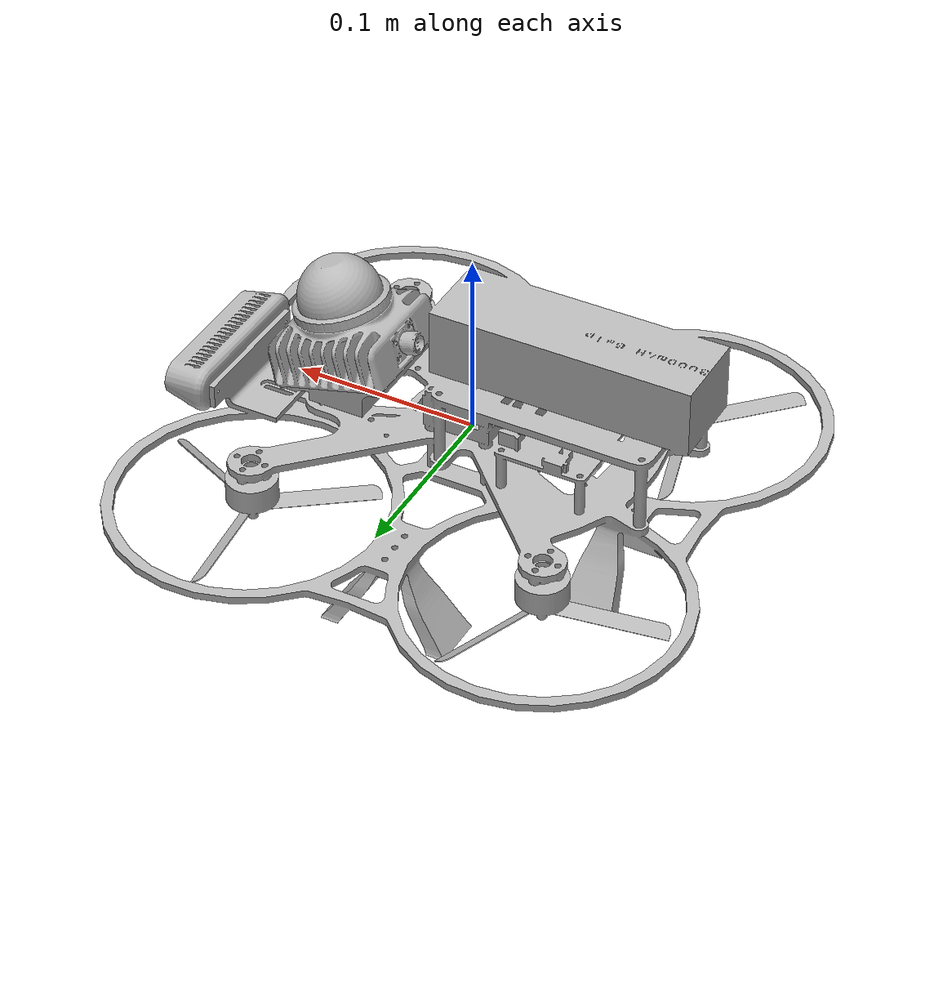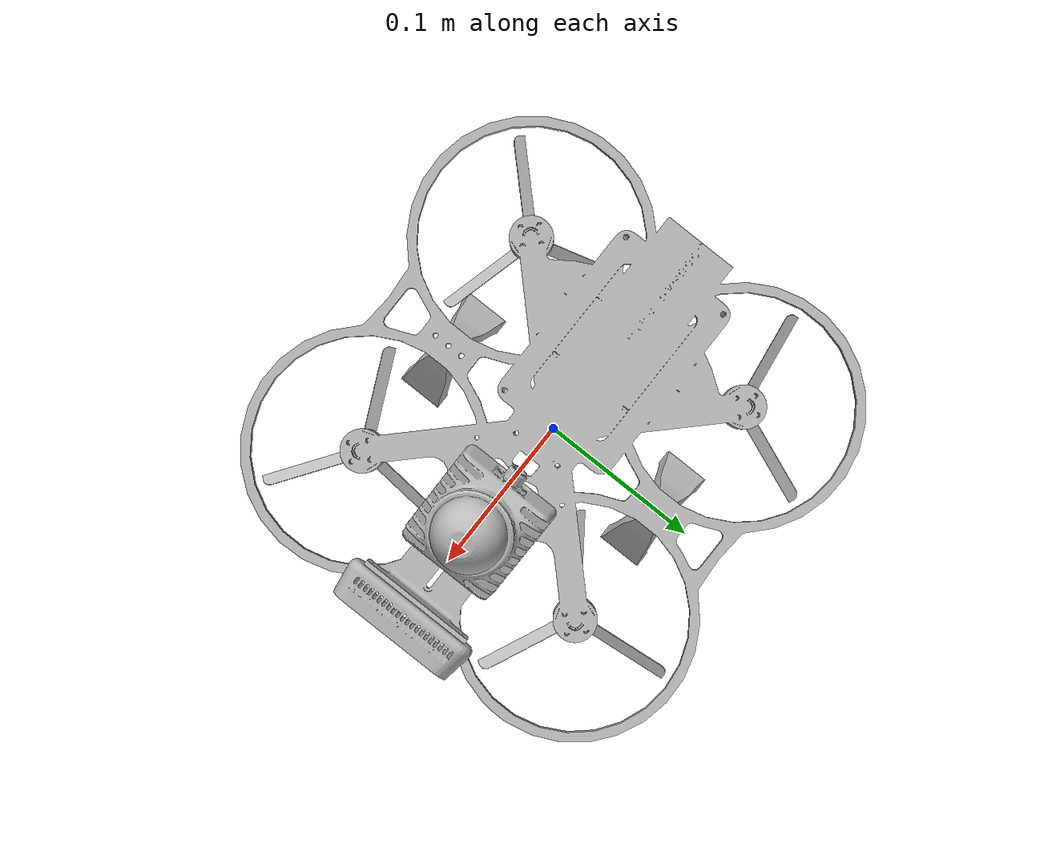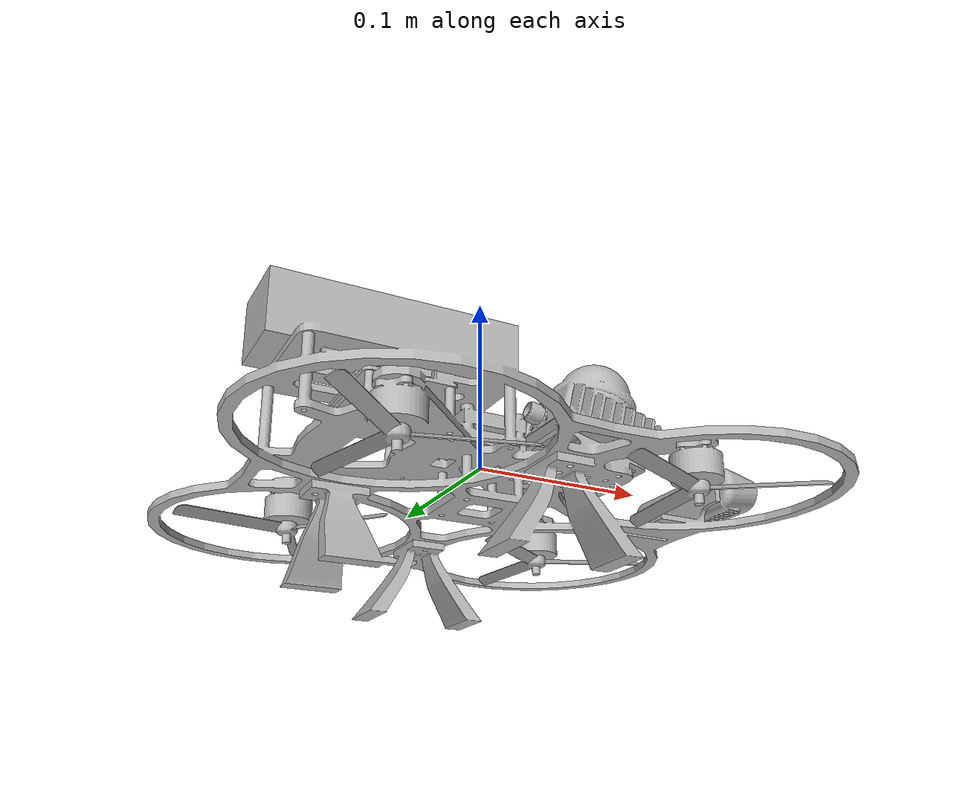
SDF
<?xml version="1.0" ?>
<sdf version='1.5'>
  <model name='uav'>

    <link name='base_link'>
      <pose frame=''>0 0 0 0 -0 0</pose>
      <inertial>
        <pose>-0.0225178215569021 -6.57896227218568E-06 0.0139624643866879 0 -0 0</pose>
        <mass>0.961089</mass>
        <inertia>
          <ixx>0.00127644805029181</ixx>
          <ixy>3.54202350999824E-08</ixy>
          <ixz>-7.517755485557E-08</ixz>
          <iyy>0.00522903</iyy>
          <iyz>0.00189227634416466</iyz>
          <izz>0.00309210466393083</izz>
        </inertia>
      </inertial>
      <collision name='base_link_collision'>
        <pose>0 0 0 0 -0 0</pose>
        <geometry>
          <mesh>
            <scale>1 1 1</scale>
            <uri>model://uav/meshes/base_link.STL</uri>
          </mesh>
        </geometry>
      </collision>
      <visual name='base_link_visual'>
        <pose>0 0 0 0 -0 0</pose>
        <geometry>
          <mesh>
            <scale>1 1 1</scale>
            <uri>model://uav/meshes/base_link.STL</uri>
          </mesh>
        </geometry>
      </visual>
      <gravity>1</gravity>
      <velocity_decay/>
    </link>

    <joint name="camera" type="fixed">
      <pose relative_to='base_link'>0.15532 0.0017162 -0.0013741 0 1.5708 0</pose>
      <parent>base_link</parent>
      <child>camera_link</child>
    </joint>

    <link name="camera_link">
      <pose relative_to='camera'>0 0 0 0 0 0</pose>
      <inertial>
        <pose>0.000136232063015659 -0.0017048035419846 -0.011444044647428 0 0 0</pose>
        <mass>0.107909832749777</mass>
        <inertia>
          <ixx>7.02561489057724E-05</ixx>
          <ixy>2.88922877896695E-10</ixy>
          <ixz>-4.93709713285397E-08</ixz>
          <iyy>7.70986396723321E-06</iyy>
          <iyz>-1.79670593839534E-08</iyz>
          <izz>7.125435257498E-05</izz>
        </inertia>
      </inertial>
      <collision name='camera_link_collision'>
       <pose>0 0 0 0 0 0</pose>
        <geometry>
          <mesh>
            <scale>1 1 1</scale>
            <uri>model://uav/meshes/camera_link.STL</uri>
          </mesh>
        </geometry>
      </collision>
      <visual name='camera_link_visual'>
        <pose>0 0 0 0 0 0</pose>
        <geometry>
          <mesh>
            <scale>1 1 1</scale>
            <uri>model://uav/meshes/camera_link.STL</uri>
          </mesh>
        </geometry>
      </visual>
      <gravity>1</gravity>
      <velocity_decay/>
    </link>

    <joint name="lidar" type="fixed">
      <pose relative_to='base_link'>0.080904 0 0.074681 0 0.2618 0</pose>
      <parent>base_link</parent>
      <child>lidar_link</child>
    </joint>

    <link name="lidar_link">
      <pose relative_to='lidar'>0 0 0 0 0 0</pose>
      <inertial>
        <pose>-0.000225895985044744 -2.48539042069229E-07 -0.0356306802252529 0 0 0</pose>
        <mass>0.126556231362929</mass>
        <inertia>
          <ixx>3.65033273726769E-05</ixx>
          <ixy>-9.06996386175696E-11</ixy>
          <ixz>3.04767232794276E-07</ixz>
          <iyy>3.97162828413759E-05</iyy>
          <iyz>1.45228125953335E-10</iyz>
          <izz>5.81891052137894E-05</izz>
        </inertia>
      </inertial>
       <collision name='lidar_link_collision'>
       <pose>0 0 0 0 0 0</pose>
        <geometry>
          <mesh>
            <scale>1 1 1</scale>
            <uri>model://uav/meshes/lidar_link.STL</uri>
          </mesh>
        </geometry>
      </collision>
      <visual name='lidar_link_visual'>
        <pose>0 0 0 0 0 0</pose>
        <geometry>
          <mesh>
            <scale>1 1 1</scale>
            <uri>model://uav/meshes/lidar_link.STL</uri>
          </mesh>
        </geometry>
      </visual>
      <sensor name='laser_livox' type='ray'>
        <visualize>1</visualize>
        <update_rate>10</update_rate>
        <always_on>1</always_on>
        <plugin name='gazebo_ros_laser_controller' filename='liblivox_laser_simulation.so'>
          <ray>
			  <scan>
				  <horizontal>
				    <samples>100</samples>
				    <resolution>1</resolution>
				    <min_angle>0</min_angle>
            			    <max_angle>6.28</max_angle>
				  </horizontal>
				  <vertical>
				    <samples>360</samples>
				    <resolution>1</resolution>
				    <min_angle>-0.0561995544444</min_angle>
           			    <max_angle>0.981223276667</max_angle>
				  </vertical>
			  </scan>
			  <range>
				  <min>0.1</min>
				  <max>30</max>
				  <resolution>0.02</resolution>
			  </range>
			  <noise>
				  <type>gaussian</type>
				  <mean>0.0</mean>
				  <stddev>0.0</stddev>
			  </noise>
			  </ray>
          <frameName>laser_livox_link</frameName>
          <visualize>1</visualize>
          <samples>24000</samples>
          <downsample>1</downsample>
          <csv_file_name>/home/tuxuan/A-Program/tx_ws/src/livox_laser_simulation/scan_mode/mid360.csv</csv_file_name>
          <ros_topic>/scan</ros_topic>
        </plugin>
        <pose>0 0 0 0 0 0</pose>
      </sensor>
      <gravity>1</gravity>
      <velocity_decay/>
    </link>

       <joint name='propeller_1' type='revolute'>
      <pose relative_to='base_link'>0.081317 0.081317 -0.0264 0 -0 0</pose>
      <parent>base_link</parent>
      <child>propeller_1_link</child>
      <axis>
        <xyz>0 0 -1</xyz>
        <limit>
          <lower>-1e+16</lower>
          <upper>1e+16</upper>
        </limit>
        <dynamics>
          <spring_reference>0</spring_reference>
          <spring_stiffness>0</spring_stiffness>
        </dynamics>
      </axis>
    </joint>

    <link name='propeller_1_link'>
      <pose relative_to='propeller_1'>0 0 0 0 -0 0</pose>
      <inertial>
        <pose>-0 -0 0.003491 0 -0 0</pose>
        <mass>0.0012983</mass>
        <inertia>
          <ixx>5.4247e-07</ixx>
          <ixy>-3.2114e-14</ixy>
          <ixz>8.3771e-14</ixz>
          <iyy>5.4246e-07</iyy>
          <iyz>5.8084e-15</iyz>
          <izz>1.0787e-06</izz>
        </inertia>
      </inertial>

      <collision name='propeller_1_link_collision'>
        <pose>0 0 0 0 -0 0</pose>
        <geometry>
          <mesh>
            <scale>1 1 1</scale>
            <uri>model://uav/meshes/propeller_1_link.STL</uri>
          </mesh>
        </geometry>
      </collision>
      <visual name='propeller_1_link_visual'>
        <pose>0 0 0 0 -0 0</pose>
        <geometry>
          <mesh>
            <scale>1 1 1</scale>
            <uri>model://uav/meshes/propeller_1_link.STL</uri>
          </mesh>
        </geometry>
      </visual>
      <gravity>1</gravity>
      <velocity_decay/>
    </link>

    <joint name='propeller_2' type='revolute'>
      <pose relative_to='base_link'>0.081317 -0.081317 -0.0264 0 -0 0</pose>
      <parent>base_link</parent>
      <child>propeller_2_link</child>
      <axis>
        <xyz>0 0 1</xyz>
        <limit>
          <lower>-1e+16</lower>
          <upper>1e+16</upper>
        </limit>
        <dynamics>
          <spring_reference>0</spring_reference>
          <spring_stiffness>0</spring_stiffness>
        </dynamics>
      </axis>
    </joint>

    <link name='propeller_2_link'>
      <pose relative_to='propeller_2'>0 0 0 0 -0 0</pose>
      <inertial>
        <pose>-0 -0 0.003491 0 -0 0</pose>
        <mass>0.00129831</mass>
        <inertia>
          <ixx>5.42465e-07</ixx>
          <ixy>-1.52128e-13</ixy>
          <ixz>6.07542e-14</ixz>
          <iyy>5.42465e-07</iyy>
          <iyz>2.54999e-14</iyz>
          <izz>1.07868e-06</izz>
        </inertia>
      </inertial>
      <collision name='propeller_2_link_collision'>
        <pose>0 0 0 0 -0 0</pose>
        <geometry>
          <mesh>
            <scale>1 1 1</scale>
            <uri>model://uav/meshes/propeller_2_link.STL</uri>
          </mesh>
        </geometry>
      </collision>
      <visual name='propeller_2_link_visual'>
        <pose>0 0 0 0 -0 0</pose>
        <geometry>
          <mesh>
            <scale>1 1 1</scale>
            <uri>model://uav/meshes/propeller_2_link.STL</uri>
          </mesh>
        </geometry>
      </visual>
      <gravity>1</gravity>
      <velocity_decay/>
    </link>

    <joint name='propeller_3' type='revolute'>
      <pose relative_to='base_link'>-0.081317 -0.081317 -0.0264 0 -0 0</pose>
      <parent>base_link</parent>
      <child>propeller_3_link</child>
      <axis>
        <xyz>0 0 -1</xyz>
        <limit>
          <lower>-1e+16</lower>
          <upper>1e+16</upper>
        </limit>
        <dynamics>
          <spring_reference>0</spring_reference>
          <spring_stiffness>0</spring_stiffness>
        </dynamics>
      </axis>
    </joint>

    <link name='propeller_3_link'>
      <pose relative_to='propeller_3'>0 0 0 0 -0 0</pose>
      <inertial>
        <pose>0 -0 0.003491 0 -0 0</pose>
        <mass>0.0012983</mass>
        <inertia>
          <ixx>5.4246e-07</ixx>
          <ixy>1.5689e-13</ixy>
          <ixz>4.6336e-14</ixz>
          <iyy>5.4246e-07</iyy>
          <iyz>-1.3257e-14</iyz>
          <izz>1.0787e-06</izz>
        </inertia>
      </inertial>
      <collision name='propeller_3_link_collision'>
        <pose>0 0 0 0 -0 0</pose>
        <geometry>
          <mesh>
            <scale>1 1 1</scale>
            <uri>model://uav/meshes/propeller_3_link.STL</uri>
          </mesh>
        </geometry>
      </collision>
      <visual name='propeller_3_link_visual'>
        <pose>0 0 0 0 -0 0</pose>
        <geometry>
          <mesh>
            <scale>1 1 1</scale>
            <uri>model://uav/meshes/propeller_3_link.STL</uri>
          </mesh>
        </geometry>
      </visual>
      <gravity>1</gravity>
      <velocity_decay/>
    </link>

    <joint name='propeller_4' type='revolute'>
      <pose relative_to='base_link'>-0.081317 0.081317 -0.0264 0 -0 0</pose>
      <parent>base_link</parent>
      <child>propeller_4_link</child>
      <axis>
        <xyz>0 0 1</xyz>
        <limit>
          <lower>-1e+16</lower>
          <upper>1e+16</upper>
        </limit>
        <dynamics>
          <spring_reference>0</spring_reference>
          <spring_stiffness>0</spring_stiffness>
        </dynamics>
      </axis>
    </joint>

    <link name='propeller_4_link'>
      <pose relative_to='propeller_4'>0 0 0 0 -0 0</pose>
      <inertial>
        <pose>0 -0 0.003491 0 -0 0</pose>
        <mass>0.0012983</mass>
        <inertia>
          <ixx>5.4246e-07</ixx>
          <ixy>5.4591e-16</ixy>
          <ixz>-6.3118e-16</ixz>
          <iyy>5.4246e-07</iyy>
          <iyz>8.0385e-14</iyz>
          <izz>1.0787e-06</izz>
        </inertia>
      </inertial>
      <collision name='propeller_4_link_collision'>
        <pose>0 0 0 0 -0 0</pose>
        <geometry>
          <mesh>
            <scale>1 1 1</scale>
            <uri>model://uav/meshes/propeller_4_link.STL</uri>
          </mesh>
        </geometry>
      </collision>
      <visual name='propeller_4_link_visual'>
        <pose>0 0 0 0 -0 0</pose>
        <geometry>
          <mesh>
            <scale>1 1 1</scale>
            <uri>model://uav/meshes/propeller_4_link.STL</uri>
          </mesh>
        </geometry>
      </visual>
      <gravity>1</gravity>
      <velocity_decay/>
    </link>

    <link name='/imu_link'>
      <pose>0 0 0.02 0 0 0</pose>
      <inertial>
        <pose>0 0 0 0 0 0</pose>
        <mass>0.015</mass>
        <inertia>
          <ixx>1e-05</ixx>
          <ixy>0</ixy>
          <ixz>0</ixz>
          <iyy>1e-05</iyy>
          <iyz>0</iyz>
          <izz>1e-05</izz>
        </inertia>
      </inertial>
    </link>
    <joint name='/imu_joint' type='fixed'>
      <child>/imu_link</child>
      <parent>base_link</parent>
      <axis>
        <xyz>1 0 0</xyz>
        <limit>
          <lower>0</lower>
          <upper>0</upper>
          <effort>0</effort>
          <velocity>0</velocity>
        </limit>
        <dynamics>
          <spring_reference>0</spring_reference>
          <spring_stiffness>0</spring_stiffness>
        </dynamics>
        <use_parent_model_frame>1</use_parent_model_frame>
      </axis>
    </joint>

    <plugin name='rosbag' filename='libgazebo_multirotor_base_plugin.so'>
      <robotNamespace/>
      <linkName>base_link</linkName>
      <rotorVelocitySlowdownSim>10</rotorVelocitySlowdownSim>
    </plugin>
    <plugin name='front_right_motor_model' filename='libgazebo_motor_model.so'>
      <robotNamespace/>
      <jointName>propeller_2</jointName>
      <linkName>propeller_2_link</linkName>
      <turningDirection>ccw</turningDirection>
      <timeConstantUp>0.0125</timeConstantUp>
      <timeConstantDown>0.025</timeConstantDown>
      <maxRotVelocity>1100</maxRotVelocity>
      <motorConstant>5.84e-06</motorConstant>
      <momentConstant>0.06</momentConstant>
      <commandSubTopic>/gazebo/command/motor_speed</commandSubTopic>
      <motorNumber>0</motorNumber>
      <rotorDragCoefficient>0.000175</rotorDragCoefficient>
      <rollingMomentCoefficient>1e-06</rollingMomentCoefficient>
      <motorSpeedPubTopic>/motor_speed/0</motorSpeedPubTopic>
      <rotorVelocitySlowdownSim>10</rotorVelocitySlowdownSim>
    </plugin>
    <plugin name='back_left_motor_model' filename='libgazebo_motor_model.so'>
      <robotNamespace/>
      <jointName>propeller_4</jointName>
      <linkName>propeller_4_link</linkName>
      <turningDirection>ccw</turningDirection>
      <timeConstantUp>0.0125</timeConstantUp>
      <timeConstantDown>0.025</timeConstantDown>
      <maxRotVelocity>1100</maxRotVelocity>
      <motorConstant>5.84e-06</motorConstant>
      <momentConstant>0.06</momentConstant>
      <commandSubTopic>/gazebo/command/motor_speed</commandSubTopic>
      <motorNumber>1</motorNumber>
      <rotorDragCoefficient>0.000175</rotorDragCoefficient>
      <rollingMomentCoefficient>1e-06</rollingMomentCoefficient>
      <motorSpeedPubTopic>/motor_speed/1</motorSpeedPubTopic>
      <rotorVelocitySlowdownSim>10</rotorVelocitySlowdownSim>
    </plugin>
      <plugin name='front_left_motor_model' filename='libgazebo_motor_model.so'>
      <robotNamespace/>
      <jointName>propeller_1</jointName>
      <linkName>propeller_1_link</linkName>
      <turningDirection>cw</turningDirection>
      <timeConstantUp>0.0125</timeConstantUp>
      <timeConstantDown>0.025</timeConstantDown>
      <maxRotVelocity>1100</maxRotVelocity>
      <motorConstant>5.84e-06</motorConstant>
      <momentConstant>0.06</momentConstant>
      <commandSubTopic>/gazebo/command/motor_speed</commandSubTopic>
      <motorNumber>2</motorNumber>
      <rotorDragCoefficient>0.000175</rotorDragCoefficient>
      <rollingMomentCoefficient>1e-06</rollingMomentCoefficient>
      <motorSpeedPubTopic>/motor_speed/2</motorSpeedPubTopic>
      <rotorVelocitySlowdownSim>10</rotorVelocitySlowdownSim>
    </plugin>
    <plugin name='back_right_motor_model' filename='libgazebo_motor_model.so'>
      <robotNamespace/>
      <jointName>propeller_3</jointName>
      <linkName>propeller_3_link</linkName>
      <turningDirection>cw</turningDirection>
      <timeConstantUp>0.0125</timeConstantUp>
      <timeConstantDown>0.025</timeConstantDown>
      <maxRotVelocity>1100</maxRotVelocity>
      <motorConstant>5.84e-06</motorConstant>
      <momentConstant>0.06</momentConstant>
      <commandSubTopic>/gazebo/command/motor_speed</commandSubTopic>
      <motorNumber>3</motorNumber>
      <rotorDragCoefficient>0.000175</rotorDragCoefficient>
      <rollingMomentCoefficient>1e-06</rollingMomentCoefficient>
      <motorSpeedPubTopic>/motor_speed/3</motorSpeedPubTopic>
      <rotorVelocitySlowdownSim>10</rotorVelocitySlowdownSim>
    </plugin>
    <include>
      <uri>model://gps</uri>
      <pose>0.05 0 0.04 0 0 0</pose>
      <name>gps0</name>
    </include>
    <joint name='gps0_joint' type='fixed'>
      <child>gps0::link</child>
      <parent>base_link</parent>
    </joint>
    <plugin name='groundtruth_plugin' filename='libgazebo_groundtruth_plugin.so'>
      <robotNamespace/>
    </plugin>
    <plugin name='magnetometer_plugin' filename='libgazebo_magnetometer_plugin.so'>
      <robotNamespace/>
      <pubRate>100</pubRate>
      <noiseDensity>0.0004</noiseDensity>
      <randomWalk>6.4e-06</randomWalk>
      <biasCorrelationTime>600</biasCorrelationTime>
      <magTopic>/mag</magTopic>
    </plugin>
      <plugin name='barometer_plugin' filename='libgazebo_barometer_plugin.so'>
      <robotNamespace/>
      <pubRate>50</pubRate>
      <baroTopic>/baro</baroTopic>
    </plugin>
    <plugin name='mavlink_interface' filename='libgazebo_mavlink_interface.so'>
      <robotNamespace/>
      <imuSubTopic>/imu</imuSubTopic>
      <magSubTopic>/mag</magSubTopic>
      <baroSubTopic>/baro</baroSubTopic>
      <mavlink_addr>INADDR_ANY</mavlink_addr>
      <mavlink_tcp_port>4560</mavlink_tcp_port>
      <mavlink_udp_port>14560</mavlink_udp_port>
      <serialEnabled>0</serialEnabled>
      <serialDevice>/dev/ttyACM0</serialDevice>
      <baudRate>921600</baudRate>
      <qgc_addr>INADDR_ANY</qgc_addr>
      <qgc_udp_port>14550</qgc_udp_port>
      <sdk_addr>INADDR_ANY</sdk_addr>
      <sdk_udp_port>14540</sdk_udp_port>
      <hil_mode>0</hil_mode>
      <hil_state_level>0</hil_state_level>
      <send_vision_estimation>0</send_vision_estimation>
      <send_odometry>1</send_odometry>
      <enable_lockstep>1</enable_lockstep>
      <use_tcp>1</use_tcp>
      <motorSpeedCommandPubTopic>/gazebo/command/motor_speed</motorSpeedCommandPubTopic>
      <control_channels>
        <channel name='rotor1'>
          <input_index>0</input_index>
          <input_offset>0</input_offset>
          <input_scaling>1000</input_scaling>
          <zero_position_disarmed>0</zero_position_disarmed>
          <zero_position_armed>100</zero_position_armed>
          <joint_control_type>velocity</joint_control_type>
        </channel>
          <channel name='rotor2'>
          <input_index>1</input_index>
          <input_offset>0</input_offset>
          <input_scaling>1000</input_scaling>
          <zero_position_disarmed>0</zero_position_disarmed>
          <zero_position_armed>100</zero_position_armed>
          <joint_control_type>velocity</joint_control_type>
        </channel>
        <channel name='rotor3'>
          <input_index>2</input_index>
          <input_offset>0</input_offset>
          <input_scaling>1000</input_scaling>
          <zero_position_disarmed>0</zero_position_disarmed>
          <zero_position_armed>100</zero_position_armed>
          <joint_control_type>velocity</joint_control_type>
        </channel>
        <channel name='rotor4'>
          <input_index>3</input_index>
          <input_offset>0</input_offset>
          <input_scaling>1000</input_scaling>
          <zero_position_disarmed>0</zero_position_disarmed>
          <zero_position_armed>100</zero_position_armed>
          <joint_control_type>velocity</joint_control_type>
        </channel>
          <channel name='rotor5'>
          <input_index>4</input_index>
          <input_offset>1</input_offset>
          <input_scaling>324.6</input_scaling>
          <zero_position_disarmed>0</zero_position_disarmed>
          <zero_position_armed>0</zero_position_armed>
          <joint_control_type>velocity</joint_control_type>
          <joint_control_pid>
            <p>0.1</p>
            <i>0</i>
            <d>0</d>
            <iMax>0.0</iMax>
            <iMin>0.0</iMin>
            <cmdMax>2</cmdMax>
            <cmdMin>-2</cmdMin>
          </joint_control_pid>
          <joint_name>zephyr_delta_wing::propeller_joint</joint_name>
          </channel>
        <channel name='rotor6'>
          <input_index>5</input_index>
          <input_offset>0</input_offset>
          <input_scaling>0.524</input_scaling>
          <zero_position_disarmed>0</zero_position_disarmed>
          <zero_position_armed>0</zero_position_armed>
          <joint_control_type>position</joint_control_type>
          <joint_name>zephyr_delta_wing::flap_left_joint</joint_name>
          <joint_control_pid>
            <p>10.0</p>
            <i>0</i>
            <d>0</d>
            <iMax>0</iMax>
            <iMin>0</iMin>
            <cmdMax>20</cmdMax>
            <cmdMin>-20</cmdMin>
          </joint_control_pid>
        </channel>
        <channel name='rotor7'>
          <input_index>6</input_index>
          <input_offset>0</input_offset>
          <input_scaling>0.524</input_scaling>
          <zero_position_disarmed>0</zero_position_disarmed>
          <zero_position_armed>0</zero_position_armed>
          <joint_control_type>position</joint_control_type>
          <joint_name>zephyr_delta_wing::flap_right_joint</joint_name>
          <joint_control_pid>
            <p>10.0</p>
            <i>0</i>
            <d>0</d>
            <iMax>0</iMax>
            <iMin>0</iMin>
            <cmdMax>20</cmdMax>
            <cmdMin>-20</cmdMin>
          </joint_control_pid>
        </channel>
        <channel name='rotor8'>
          <input_index>7</input_index>
          <input_offset>0</input_offset>
          <input_scaling>0.524</input_scaling>
          <zero_position_disarmed>0</zero_position_disarmed>
          <zero_position_armed>0</zero_position_armed>
          <joint_control_type>position</joint_control_type>
        </channel>
      </control_channels>
    </plugin>
    <static>0</static>
    <plugin name='rotors_gazebo_imu_plugin' filename='libgazebo_imu_plugin.so'>
      <robotNamespace/>
      <linkName>/imu_link</linkName>
      <imuTopic>/imu</imuTopic>
      <gyroscopeNoiseDensity>0.00018665</gyroscopeNoiseDensity>
      <gyroscopeRandomWalk>3.8785e-05</gyroscopeRandomWalk>
      <gyroscopeBiasCorrelationTime>1000.0</gyroscopeBiasCorrelationTime>
      <gyroscopeTurnOnBiasSigma>0.0087</gyroscopeTurnOnBiasSigma>
      <accelerometerNoiseDensity>0.00186</accelerometerNoiseDensity>
      <accelerometerRandomWalk>0.006</accelerometerRandomWalk>
      <accelerometerBiasCorrelationTime>300.0</accelerometerBiasCorrelationTime>
      <accelerometerTurnOnBiasSigma>0.196</accelerometerTurnOnBiasSigma>
    </plugin>

        <!-- For Stereo Camera Payload -->
    <include>
      <uri>model://D435i</uri>
      <pose relative_to='depth_camera_joint'>0 0 0 0 0 0</pose>
    </include>
    <joint name="depth_camera_joint" type="fixed">
      <pose relative_to='camera_link'>0 0 0 0 0 1.5708</pose>
      <child>D435i::camera_link</child>
      <parent>base_link</parent>
    </joint>

          <!-- For IMU-->
    <include>
      <uri>model://imu_gazebo</uri>
      <pose>0 0 -0.05 0 0 0</pose>
    </include>
    <joint name="imu_gazebo_joint" type="fixed">
      <child>imu_gazebo::link</child>
      <parent>base_link</parent>
      <axis>
        <xyz>0 0 1</xyz>
        <limit>
          <upper>0</upper>
          <lower>0</lower>
        </limit>
      </axis>
    </joint>

  </model>
</sdf>
<!-- vim: set noet fenc=utf-8 ff=unix sts=0 sw=4 ts=4 : -->

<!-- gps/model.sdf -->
<sdf version="1.6">
  <model name="gps">
    <link name="link">
      <pose>0 0 0 0 0 0</pose>
      <inertial>
        <pose>0 0 0 0 0 0</pose>
        <mass>0.015</mass>
        <inertia>
          <ixx>1e-05</ixx>
          <ixy>0</ixy>
          <ixz>0</ixz>
          <iyy>1e-05</iyy>
          <iyz>0</iyz>
          <izz>1e-05</izz>
        </inertia>
      </inertial>
      <visual name="visual">
        <geometry>
          <cylinder>
            <radius>0.01</radius>
            <length>0.002</length>
          </cylinder>
        </geometry>
        <material>
          <script>
            <name>Gazebo/Black</name>
            <uri>file://usr/share/gz/gz-sim8/media/gazebo.material</uri>
          </script>
        </material>
      </visual>
      <sensor name="gps" type="gps">
        <pose>0 0 0 0 0 0</pose>
        <update_rate>5.0</update_rate>
        <always_on>true</always_on>
        <visualize>false</visualize>
        <!-- GpsSensor noise currently not used -->
        <plugin name="gps_plugin" filename="libgazebo_gps_plugin.so">
          <robotNamespace></robotNamespace>
          <gpsNoise>true</gpsNoise>
          <gpsXYRandomWalk>2.0</gpsXYRandomWalk>
          <gpsZRandomWalk>4.0</gpsZRandomWalk>
          <gpsXYNoiseDensity>2.0e-4</gpsXYNoiseDensity>
          <gpsZNoiseDensity>4.0e-4</gpsZNoiseDensity>
          <gpsVXYNoiseDensity>0.2</gpsVXYNoiseDensity>
          <gpsVZNoiseDensity>0.4</gpsVZNoiseDensity>
        </plugin>
      </sensor>
    </link>
  </model>
</sdf>

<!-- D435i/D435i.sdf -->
<sdf version="1.6">
  <model name="D435i">
    <link name="camera_link">
      <inertial>
        <mass>1e-10</mass>
        <inertia>
          <ixx>1e-06</ixx>
          <ixy>0</ixy>
          <ixz>0</ixz>
          <iyy>1e-06</iyy>
          <iyz>0</iyz>
          <izz>1e-06</izz>
        </inertia>
      </inertial>
      <self_collide>0</self_collide>
      <kinematic>0</kinematic>
      <gravity>1</gravity>
      <collision name='collision'>
        <pose>0 0 0 0 0 0</pose>
        <geometry>
          <box>
            <size>0.02505 0.090 0.025</size>
          </box>
        </geometry>
      </collision>
    </link>

    <link name="imu_link">
      <pose>0 0 0 0 0 0</pose>
      <inertial>
        <pose frame=''>0 0 0 0 -0 0</pose>
        <mass>1e-10</mass>
        <inertia>
          <ixx>1e-06</ixx>
          <ixy>0</ixy>
          <ixz>0</ixz>
          <iyy>1e-06</iyy>
          <iyz>0</iyz>
          <izz>1e-06</izz>
        </inertia>
      </inertial>
      <sensor name="imu_sensor" type="imu">
        <always_on>true</always_on>
        <update_rate>100</update_rate>
        <visualize>true</visualize>
        <topic>__default_topic__</topic>
        <plugin filename="libgazebo_ros_imu_sensor.so" name="imu_plugin">
          <robotNamespace/>
          <topicName>/camera/imu</topicName>
          <bodyName>imu_link</bodyName>
          <updateRateHZ>100.0</updateRateHZ>
          <gaussianNoise>0.0</gaussianNoise>
          <xyzOffset>0 0 0</xyzOffset>
          <rpyOffset>0 0 0</rpyOffset>
          <frameName>imu_link</frameName>
          <initialOrientationAsReference>false</initialOrientationAsReference>
        </plugin>
      </sensor>
    </link>
    <joint name='camera_imu_joint' type='revolute'>
      <child>imu_link</child>
      <parent>camera_link</parent>
      <axis>
        <xyz>1 0 0</xyz>
        <limit>
          <lower>0</lower>
          <upper>0</upper>
          <effort>0</effort>
          <velocity>0</velocity>
        </limit>
        <dynamics>
          <spring_reference>0</spring_reference>
          <spring_stiffness>0</spring_stiffness>
        </dynamics>
        <use_parent_model_frame>1</use_parent_model_frame>
      </axis>
    </joint>

    <link name="camera_color_frame">
      <pose>0.0325 0 0 3.14 -1.57 1.57</pose>
      <inertial>
        <pose frame=''>0 0 0 0 -0 0</pose>
        <mass>1e-10</mass>
        <inertia>
          <ixx>1e-06</ixx>
          <ixy>0</ixy>
          <ixz>0</ixz>
          <iyy>1e-06</iyy>
          <iyz>0</iyz>
          <izz>1e-06</izz>
        </inertia>
      </inertial>
      <sensor name="color" type="camera">
        <camera name="color">
          <horizontal_fov>1.211</horizontal_fov>
          <image>
            <width>640</width>
            <height>480</height>
            <format>RGB_INT8</format>
          </image>
          <clip>
            <near>0.1</near>
            <far>100</far>
          </clip>
          <noise>
            <type>gaussian</type>
            <mean>0.0</mean>
            <stddev>0.007</stddev>
          </noise>
        </camera>
        <always_on>1</always_on>
        <update_rate>30</update_rate>
        <visualize>1</visualize>
      </sensor>
    </link>
    <joint name='camera_color_joint' type='revolute'>
      <child>camera_color_frame</child>
      <parent>camera_link</parent>
      <axis>
        <xyz>1 0 0</xyz>
        <limit>
          <lower>0</lower>
          <upper>0</upper>
          <effort>0</effort>
          <velocity>0</velocity>
        </limit>
        <dynamics>
          <spring_reference>0</spring_reference>
          <spring_stiffness>0</spring_stiffness>
        </dynamics>
        <use_parent_model_frame>1</use_parent_model_frame>
      </axis>
    </joint>

    <link name="camera_ired1_frame">
      <pose>0.02 0 0 3.14 -1.57 1.57</pose>
      <inertial>
        <pose frame=''>0 0 0 0 -0 0</pose>
        <mass>1e-10</mass>
        <inertia>
          <ixx>1e-06</ixx>
          <ixy>0</ixy>
          <ixz>0</ixz>
          <iyy>1e-06</iyy>
          <iyz>0</iyz>
          <izz>1e-06</izz>
        </inertia>
      </inertial>
      <sensor name="ired1" type="camera">
        <camera name="ired1">
          <horizontal_fov>1.571</horizontal_fov>
          <image>
            <width>640</width>
            <height>480</height>
            <format>L_INT8</format>
          </image>
          <clip>
            <near>0.1</near>
            <far>100</far>
          </clip>
          <noise>
            <type>gaussian</type>
            <mean>0.0</mean>
            <stddev>0.007</stddev>
          </noise>
        </camera>
        <always_on>1</always_on>
        <update_rate>30</update_rate>
        <visualize>0</visualize>
      </sensor>
    </link>
    <joint name='camera_ired1_joint' type='revolute'>
      <child>camera_ired1_frame</child>
      <parent>camera_link</parent>
      <axis>
        <xyz>1 0 0</xyz>
        <limit>
          <lower>0</lower>
          <upper>0</upper>
          <effort>0</effort>
          <velocity>0</velocity>
        </limit>
        <dynamics>
          <spring_reference>0</spring_reference>
          <spring_stiffness>0</spring_stiffness>
        </dynamics>
        <use_parent_model_frame>1</use_parent_model_frame>
      </axis>
    </joint>

    <link name="camera_ired2_frame">
      <pose>-0.03 0 0 3.14 -1.57 1.57</pose>
      <inertial>
        <pose frame=''>0 0 0 0 -0 0</pose>
        <mass>1e-10</mass>
        <inertia>
          <ixx>1e-06</ixx>
          <ixy>0</ixy>
          <ixz>0</ixz>
          <iyy>1e-06</iyy>
          <iyz>0</iyz>
          <izz>1e-06</izz>
        </inertia>
      </inertial>
      <sensor name="ired2" type="camera">
        <camera name="ired2">
          <horizontal_fov>1.571</horizontal_fov>
          <image>
            <width>640</width>
            <height>480</height>
            <format>L_INT8</format>
          </image>
          <clip>
            <near>0.1</near>
            <far>100</far>
          </clip>
          <noise>
            <type>gaussian</type>
            <mean>0.0</mean>
            <stddev>0.007</stddev>
          </noise>
        </camera>
        <always_on>1</always_on>
        <update_rate>30</update_rate>
        <visualize>0</visualize>
      </sensor>
    </link>
    <joint name='camera_ired2_joint' type='revolute'>
      <child>camera_ired2_frame</child>
      <parent>camera_link</parent>
      <axis>
        <xyz>1 0 0</xyz>
        <limit>
          <lower>0</lower>
          <upper>0</upper>
          <effort>0</effort>
          <velocity>0</velocity>
        </limit>
        <dynamics>
          <spring_reference>0</spring_reference>
          <spring_stiffness>0</spring_stiffness>
        </dynamics>
        <use_parent_model_frame>1</use_parent_model_frame>
      </axis>
    </joint>

    <link name="camera_depth_frame">
      <pose>0.0325 0 0 3.14 -1.57 1.57</pose>
      <inertial>
        <pose frame=''>0 0 0 0 -0 0</pose>
        <mass>1e-10</mass>
        <inertia>
          <ixx>1e-06</ixx>
          <ixy>0</ixy>
          <ixz>0</ixz>
          <iyy>1e-06</iyy>
          <iyz>0</iyz>
          <izz>1e-06</izz>
        </inertia>
      </inertial>
      <sensor name="depth" type="depth">
        <camera name="depth">
          <horizontal_fov>1.571</horizontal_fov>
          <image>
            <width>640</width>
            <height>480</height>
          </image>
          <clip>
            <near>0.1</near>
            <far>100</far>
          </clip>
          <noise>
            <type>gaussian</type>
            <mean>0.0</mean>
            <stddev>0.007</stddev>
          </noise>
        </camera>
        <always_on>1</always_on>
        <update_rate>30</update_rate>
        <visualize>0</visualize>
      </sensor>
    </link>
    <joint name='camera_depth_joint' type='revolute'>
      <child>camera_depth_frame</child>
      <parent>camera_link</parent>
      <axis>
        <xyz>1 0 0</xyz>
        <limit>
          <lower>0</lower>
          <upper>0</upper>
          <effort>0</effort>
          <velocity>0</velocity>
        </limit>
        <dynamics>
          <spring_reference>0</spring_reference>
          <spring_stiffness>0</spring_stiffness>
        </dynamics>
        <use_parent_model_frame>1</use_parent_model_frame>
      </axis>
    </joint>

    <plugin name="camera" filename="librealsense_gazebo_plugin.so">
      <depthUpdateRate>30</depthUpdateRate>
      <colorUpdateRate>30</colorUpdateRate>
      <infraredUpdateRate>30</infraredUpdateRate>
      <depthTopicName>depth/image_raw</depthTopicName>
      <depthCameraInfoTopicName>depth/camera_info</depthCameraInfoTopicName>
      <colorTopicName>color/image_raw</colorTopicName>
      <colorCameraInfoTopicName>color/camera_info</colorCameraInfoTopicName>
      <infrared1TopicName>infra1/image_raw</infrared1TopicName>
      <infrared1CameraInfoTopicName>infra1/camera_info</infrared1CameraInfoTopicName>
      <infrared2TopicName>infra2/image_raw</infrared2TopicName>
      <infrared2CameraInfoTopicName>infra2/camera_info</infrared2CameraInfoTopicName>
      <colorOpticalframeName>camera_color_frame</colorOpticalframeName>
      <depthOpticalframeName>camera_depth_frame</depthOpticalframeName>
      <infrared1OpticalframeName>camera_ired1_frame</infrared1OpticalframeName>
      <infrared2OpticalframeName>camera_ired2_frame</infrared2OpticalframeName>
      <rangeMinDepth>0.2</rangeMinDepth>
      <rangeMaxDepth>10.0</rangeMaxDepth>
      <pointCloud>false</pointCloud>
      <pointCloudTopicName>depth/color/points</pointCloudTopicName>
      <pointCloudCutoff>0.25</pointCloudCutoff>
      <pointCloudCutoffMax>9.0</pointCloudCutoffMax>
    </plugin>

  </model>
</sdf>

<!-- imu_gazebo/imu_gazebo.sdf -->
<sdf version="1.5">
  <model name="imu_gazebo">
    <link name="link">
      <pose>0 0 0 0 0 0</pose>
      <inertial>
        <mass>1e-5</mass>
        <inertia>
          <ixx>0</ixx>
          <iyy>0</iyy>
          <izz>0</izz>
        </inertia>
      </inertial>

    <sensor name="imu_sensor" type="imu">
      <always_on>true</always_on>
      <parent>link</parent>
      <update_rate>500</update_rate>
      <visualize>true</visualize>
      <topic>imu_gazebo</topic>
      <plugin filename="libgazebo_ros_imu_sensor.so" name="imu_plugin">
        <topicName>imu_gazebo</topicName>
        <bodyName>imu_link_stereo</bodyName>
        <updateRateHZ>500.0</updateRateHZ>
        <gaussianNoise>0.0</gaussianNoise>
        <xyzOffset>0 0 0</xyzOffset>
        <rpyOffset>0 0 0</rpyOffset>
        <frameName>imu_link_stereo</frameName>

        <gyroscopeNoiseDensity>0.0006</gyroscopeNoiseDensity>
        <gyroscopeRandomWalk>0.000003</gyroscopeRandomWalk>
        <gyroscopeTurnOnBiasSigma>0.03</gyroscopeTurnOnBiasSigma>

        <accelerometerNoiseDensity>0.002</accelerometerNoiseDensity>
        <accelerometerRandomWalk>0.00002</accelerometerRandomWalk>
        <accelerometerTurnOnBiasSigma>0.1</accelerometerTurnOnBiasSigma>

      </plugin>
      <pose>0 0 0.3 0 0 0</pose>
    </sensor>
    </link>
  </model>
</sdf>
